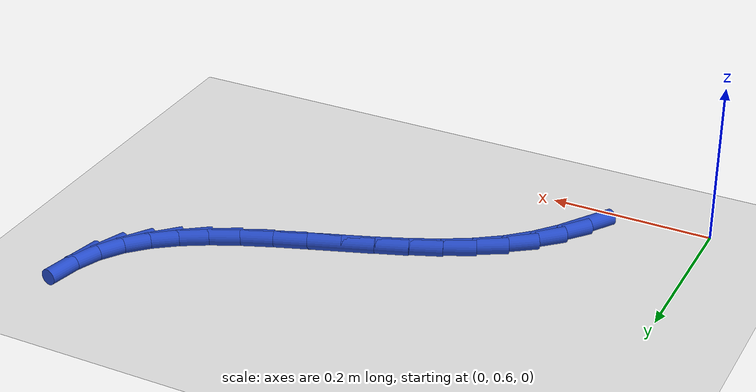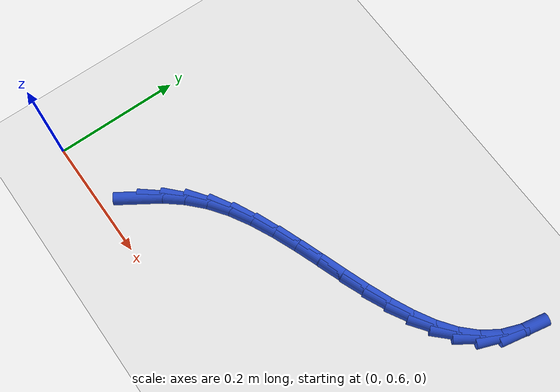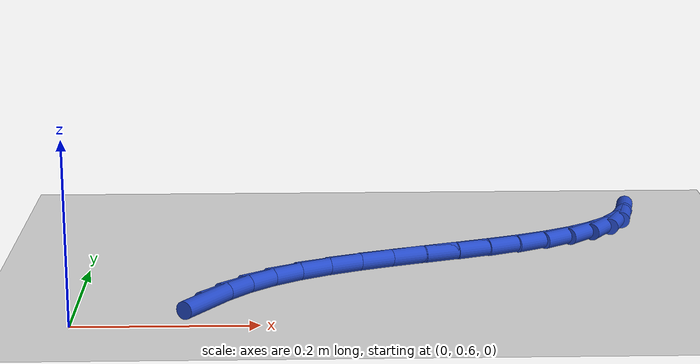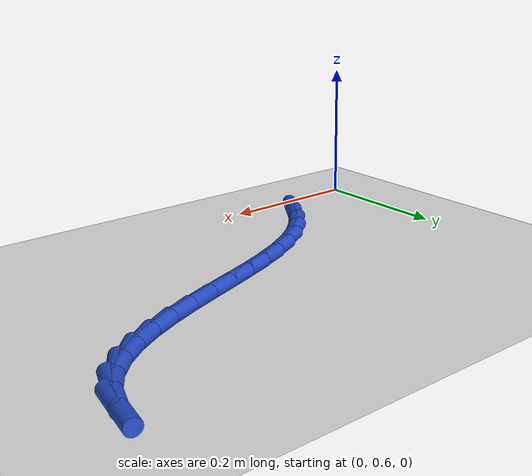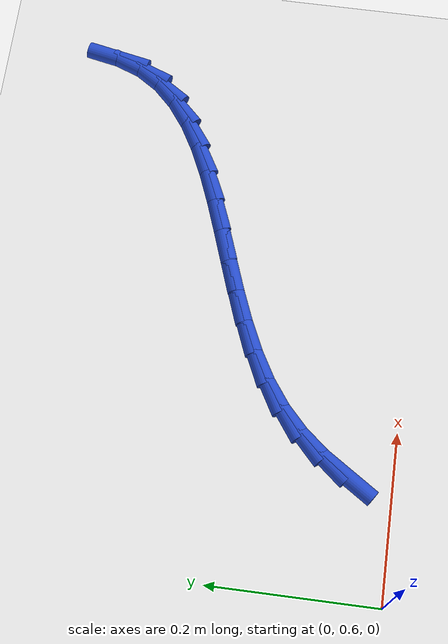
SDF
<sdf version="1.6">
 <world name="default">
  <model name="ground_plane">
   <static>1</static>
   <link name="link">
    <collision name="collision">
     <geometry><plane><normal>0 0 1</normal><size>100 100</size></plane></geometry>
     <surface><friction><ode><mu>100</mu><mu2>50</mu2></ode></friction></surface>
    </collision>
    <visual name="visual">
     <cast_shadows>0</cast_shadows>
     <geometry><plane><normal>0 0 1</normal><size>100 100</size></plane></geometry>
     <material>
      <script><uri>file://media/materials/scripts/gazebo.material</uri><name>Gazebo/WhiteGlow</name></script>
     </material>
    </visual>
   </link>
  </model>
  <model name="line">
   <link name="link_18">
    <pose>0.14057385626235486 0.6550917442443535 0.01 0 1.57 0.9863147120510044</pose>
    <collision name="collision">
     <geometry><cylinder><radius>0.01</radius><length>0.08</length></cylinder></geometry>
    </collision>
    <visual name="visual">
     <material>
      <script><name>Gazebo/Blue</name><uri>file://media/materials/scripts/gazebo.material</uri></script>
     </material>
     <geometry><cylinder><radius>0.01</radius><length>0.08</length></cylinder></geometry>
    </visual>
   </link>
   <link name="link_19">
    <pose>0.1601487711910809 0.6846793068392655 0.01 0 1.57 0.8746074095480045</pose>
    <collision name="collision">
     <geometry><cylinder><radius>0.01</radius><length>0.08</length></cylinder></geometry>
    </collision>
    <visual name="visual">
     <material>
      <script><name>Gazebo/Blue</name><uri>file://media/materials/scripts/gazebo.material</uri></script>
     </material>
     <geometry><cylinder><radius>0.01</radius><length>0.08</length></cylinder></geometry>
    </visual>
   </link>
   <link name="link_20">
    <pose>0.1828119781901006 0.7117950767048666 0.01 0 1.57 0.7510992967602634</pose>
    <collision name="collision">
     <geometry><cylinder><radius>0.01</radius><length>0.08</length></cylinder></geometry>
    </collision>
    <visual name="visual">
     <material>
      <script><name>Gazebo/Blue</name><uri>file://media/materials/scripts/gazebo.material</uri></script>
     </material>
     <geometry><cylinder><radius>0.01</radius><length>0.08</length></cylinder></geometry>
    </visual>
   </link>
   <link name="link_21">
    <pose>0.20888749360574713 0.736140531512399 0.01 0 1.57 0.6222709550161053</pose>
    <collision name="collision">
     <geometry><cylinder><radius>0.01</radius><length>0.08</length></cylinder></geometry>
    </collision>
    <visual name="visual">
     <material>
      <script><name>Gazebo/Blue</name><uri>file://media/materials/scripts/gazebo.material</uri></script>
     </material>
     <geometry><cylinder><radius>0.01</radius><length>0.08</length></cylinder></geometry>
    </visual>
   </link>
   <link name="link_22">
    <pose>0.23862778836562093 0.7574745226942908 0.01 0 1.57 0.513608327752599</pose>
    <collision name="collision">
     <geometry><cylinder><radius>0.01</radius><length>0.08</length></cylinder></geometry>
    </collision>
    <visual name="visual">
     <material>
      <script><name>Gazebo/Blue</name><uri>file://media/materials/scripts/gazebo.material</uri></script>
     </material>
     <geometry><cylinder><radius>0.01</radius><length>0.08</length></cylinder></geometry>
    </visual>
   </link>
   <link name="link_23">
    <pose>0.27162280484067824 0.7760871971294381 0.01 0 1.57 0.434576114114697</pose>
    <collision name="collision">
     <geometry><cylinder><radius>0.01</radius><length>0.08</length></cylinder></geometry>
    </collision>
    <visual name="visual">
     <material>
      <script><name>Gazebo/Blue</name><uri>file://media/materials/scripts/gazebo.material</uri></script>
     </material>
     <geometry><cylinder><radius>0.01</radius><length>0.08</length></cylinder></geometry>
    </visual>
   </link>
   <link name="link_24">
    <pose>0.3071037060225946 0.7925564143524177 0.01 0 1.57 0.3811711112654651</pose>
    <collision name="collision">
     <geometry><cylinder><radius>0.01</radius><length>0.08</length></cylinder></geometry>
    </collision>
    <visual name="visual">
     <material>
      <script><name>Gazebo/Blue</name><uri>file://media/materials/scripts/gazebo.material</uri></script>
     </material>
     <geometry><cylinder><radius>0.01</radius><length>0.08</length></cylinder></geometry>
    </visual>
   </link>
   <link name="link_25">
    <pose>0.3442981206101238 0.8074628681209044 0.01 0 1.57 0.35008837016153826</pose>
    <collision name="collision">
     <geometry><cylinder><radius>0.01</radius><length>0.08</length></cylinder></geometry>
    </collision>
    <visual name="visual">
     <material>
      <script><name>Gazebo/Blue</name><uri>file://media/materials/scripts/gazebo.material</uri></script>
     </material>
     <geometry><cylinder><radius>0.01</radius><length>0.08</length></cylinder></geometry>
    </visual>
   </link>
   <link name="link_26">
    <pose>0.38243367730201894 0.8213872521925707 0.01 0 1.57 0.3393816111067285</pose>
    <collision name="collision">
     <geometry><cylinder><radius>0.01</radius><length>0.08</length></cylinder></geometry>
    </collision>
    <visual name="visual">
     <material>
      <script><name>Gazebo/Blue</name><uri>file://media/materials/scripts/gazebo.material</uri></script>
     </material>
     <geometry><cylinder><radius>0.01</radius><length>0.08</length></cylinder></geometry>
    </visual>
   </link>
   <link name="link_27">
    <pose>0.42073800479703355 0.8349102603250897 0.01 0 1.57 0.3486063184376379</pose>
    <collision name="collision">
     <geometry><cylinder><radius>0.01</radius><length>0.08</length></cylinder></geometry>
    </collision>
    <visual name="visual">
     <material>
      <script><name>Gazebo/Blue</name><uri>file://media/materials/scripts/gazebo.material</uri></script>
     </material>
     <geometry><cylinder><radius>0.01</radius><length>0.08</length></cylinder></geometry>
    </visual>
   </link>
   <link name="link_28">
    <pose>0.45843873179392075 0.8486125862761349 0.01 0 1.57 0.37890188908485356</pose>
    <collision name="collision">
     <geometry><cylinder><radius>0.01</radius><length>0.08</length></cylinder></geometry>
    </collision>
    <visual name="visual">
     <material>
      <script><name>Gazebo/Blue</name><uri>file://media/materials/scripts/gazebo.material</uri></script>
     </material>
     <geometry><cylinder><radius>0.01</radius><length>0.08</length></cylinder></geometry>
    </visual>
   </link>
   <link name="link_29">
    <pose>0.4947634869914337 0.8630749238033795 0.01 0 1.57 0.4331146506210727</pose>
    <collision name="collision">
     <geometry><cylinder><radius>0.01</radius><length>0.08</length></cylinder></geometry>
    </collision>
    <visual name="visual">
     <material>
      <script><name>Gazebo/Blue</name><uri>file://media/materials/scripts/gazebo.material</uri></script>
     </material>
     <geometry><cylinder><radius>0.01</radius><length>0.08</length></cylinder></geometry>
    </visual>
   </link>
   <link name="link_30">
    <pose>0.5289398990883263 0.8788779666644964 0.01 0 1.57 0.5158608734634753</pose>
    <collision name="collision">
     <geometry><cylinder><radius>0.01</radius><length>0.08</length></cylinder></geometry>
    </collision>
    <visual name="visual">
     <material>
      <script><name>Gazebo/Blue</name><uri>file://media/materials/scripts/gazebo.material</uri></script>
     </material>
     <geometry><cylinder><radius>0.01</radius><length>0.08</length></cylinder></geometry>
    </visual>
   </link>
   <link name="link_31">
    <pose>0.560195596783351 0.8966024086171589 0.01 0 1.57 0.6330779431743189</pose>
    <collision name="collision">
     <geometry><cylinder><radius>0.01</radius><length>0.08</length></cylinder></geometry>
    </collision>
    <visual name="visual">
     <material>
      <script><name>Gazebo/Blue</name><uri>file://media/materials/scripts/gazebo.material</uri></script>
     </material>
     <geometry><cylinder><radius>0.01</radius><length>0.08</length></cylinder></geometry>
    </visual>
   </link>
   <link name="link_32">
    <pose>0.5877582087752621 0.9168289434190408 0.01 0 1.57 0.7899700455883676</pose>
    <collision name="collision">
     <geometry><cylinder><radius>0.01</radius><length>0.08</length></cylinder></geometry>
    </collision>
    <visual name="visual">
     <material>
      <script><name>Gazebo/Blue</name><uri>file://media/materials/scripts/gazebo.material</uri></script>
     </material>
     <geometry><cylinder><radius>0.01</radius><length>0.08</length></cylinder></geometry>
    </visual>
   </link>
   <link name="link_33">
    <pose>0.6108553637628124 0.9401382648278145 0.01 0 1.57 0.9859455712762099</pose>
    <collision name="collision">
     <geometry><cylinder><radius>0.01</radius><length>0.08</length></cylinder></geometry>
    </collision>
    <visual name="visual">
     <material>
      <script><name>Gazebo/Blue</name><uri>file://media/materials/scripts/gazebo.material</uri></script>
     </material>
     <geometry><cylinder><radius>0.01</radius><length>0.08</length></cylinder></geometry>
    </visual>
   </link>
   <link name="link_34">
    <pose>0.6287146904447549 0.9671110666011533 0.01 0 1.57 1.2044139987612823</pose>
    <collision name="collision">
     <geometry><cylinder><radius>0.01</radius><length>0.08</length></cylinder></geometry>
    </collision>
    <visual name="visual">
     <material>
      <script><name>Gazebo/Blue</name><uri>file://media/materials/scripts/gazebo.material</uri></script>
     </material>
     <geometry><cylinder><radius>0.01</radius><length>0.08</length></cylinder></geometry>
    </visual>
   </link>
   <link name="link_35">
    <pose>0.6406674823394365 0.9982618919987081 0.01 0 1.57 1.3708400819970343</pose>
    <collision name="collision">
     <geometry><cylinder><radius>0.01</radius><length>0.08</length></cylinder></geometry>
    </collision>
    <visual name="visual">
     <material>
      <script><name>Gazebo/Blue</name><uri>file://media/materials/scripts/gazebo.material</uri></script>
     </material>
     <geometry><cylinder><radius>0.01</radius><length>0.08</length></cylinder></geometry>
    </visual>
   </link>
  </model>
 </world>
</sdf>
